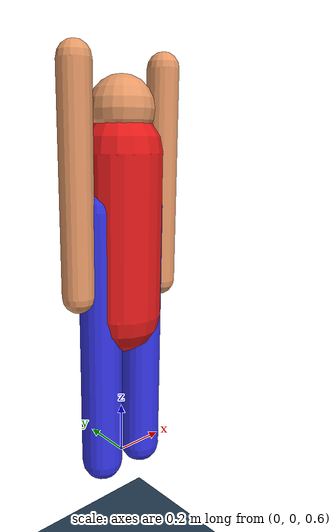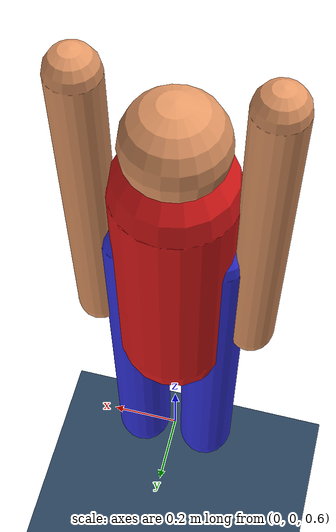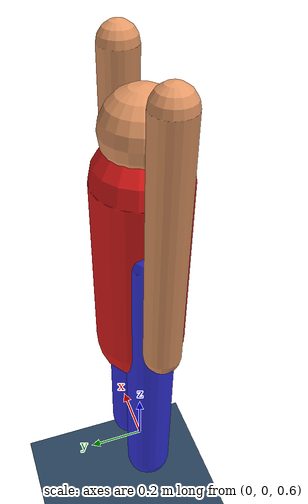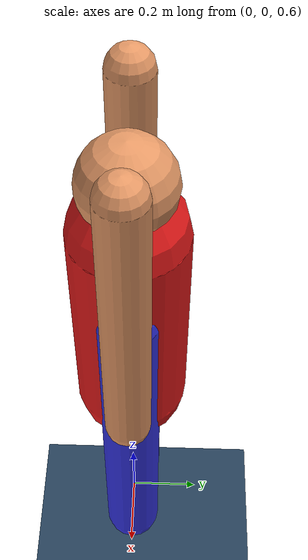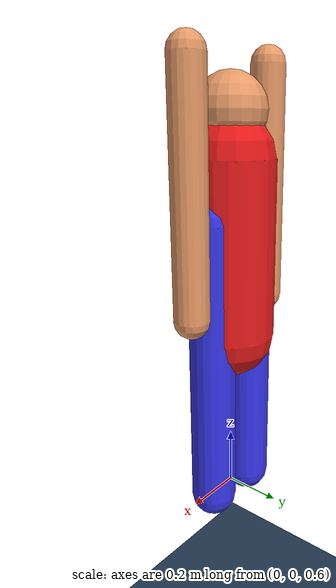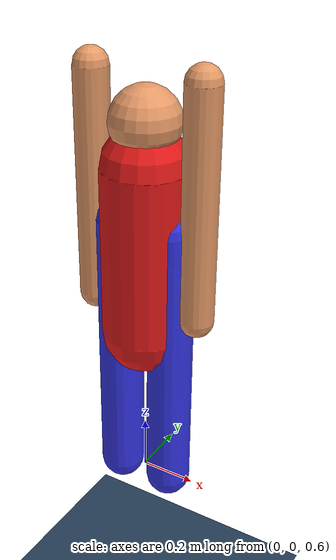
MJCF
<mujoco model="humanoid_simple">
  <option timestep="0.005" gravity="0 0 -9.81"/>

  <visual>
    <headlight ambient="0.4 0.4 0.4" diffuse="0.6 0.6 0.6" specular="0.1 0.1 0.1"/>
    <rgba haze="0.15 0.25 0.35 1"/>
    <global offwidth="1024" offheight="1024"/>
  </visual>

  <worldbody>
    <light pos="0 0 5" dir="0 0 -1" directional="true"/>
    <geom name="floor" type="plane" size="0 0 0.05" material="grid"/>

    <body name="torso" pos="0 0 1.5">
      <freejoint/>
      <geom name="torso_geom" type="capsule" size="0.15 0.3" rgba="0.9 0.1 0.1 1" mass="10"/>
      <body name="head" pos="0 0 0.45">
          <geom name="head_geom" type="sphere" size="0.12" rgba="0.9 0.6 0.4 1" mass="2"/>
      </body>
      <body name="left_arm" pos="-0.2 0 0.2">
         <geom name="l_arm_geom" type="capsule" size="0.06 0.4" rgba="0.9 0.6 0.4 1" mass="2"/>
      </body>
      <body name="right_arm" pos="0.2 0 0.2">
         <geom name="r_arm_geom" type="capsule" size="0.06 0.4" rgba="0.9 0.6 0.4 1" mass="2"/>
      </body>
      <body name="left_leg" pos="-0.1 0 -0.4">
         <geom name="l_leg_geom" type="capsule" size="0.08 0.5" rgba="0.2 0.2 0.9 1" mass="5"/>
      </body>
      <body name="right_leg" pos="0.1 0 -0.4">
         <geom name="r_leg_geom" type="capsule" size="0.08 0.5" rgba="0.2 0.2 0.9 1" mass="5"/>
      </body>
    </body>
  </worldbody>

  <asset>
    <texture type="skybox" builtin="gradient" rgb1="0.1 0.1 0.2" rgb2="0 0 0" width="512" height="512"/>
    <texture name="grid" type="2d" builtin="checker" rgb1=".1 .2 .3" rgb2=".2 .3 .4" width="512" height="512" mark="edge" markrgb=".8 .8 .8"/>
    <material name="grid" texture="grid" texrepeat="1 1" texuniform="true" reflectance=".2"/>
  </asset>
</mujoco>
